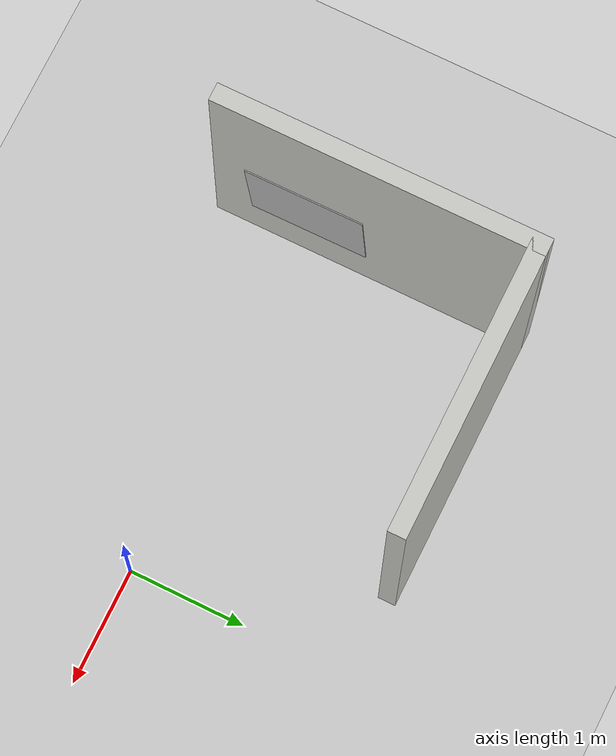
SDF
<sdf version="1.7">
 <world name="default">
  <light name="sun" type="directional">
   <pose>0 0 10 0 -0 0</pose>
   <diffuse>0.8 0.8 0.8 1</diffuse>
   <specular>0.2 0.2 0.2 1</specular>
   <attenuation>
    <range>1000</range>
    <constant>0.9</constant>
    <linear>0.01</linear>
    <quadratic>0.001</quadratic>
   </attenuation>
   <direction>-0.5 0.1 -0.9</direction>
   <spot><inner_angle>0</inner_angle><outer_angle>0</outer_angle><falloff>0</falloff></spot>
  </light>
  <model name="ground_plane">
   <static>1</static>
   <link name="link">
    <collision name="collision">
     <geometry><plane><normal>0 0 1</normal><size>100 100</size></plane></geometry>
     <surface>
      <contact><collide_bitmask>65535</collide_bitmask></contact>
      <friction><ode><mu>100</mu><mu2>50</mu2></ode></friction>
     </surface>
    </collision>
    <visual name="visual">
     <cast_shadows>0</cast_shadows>
     <geometry><plane><normal>0 0 1</normal><size>100 100</size></plane></geometry>
     <material>
      <script><uri>file://media/materials/scripts/gazebo.material</uri><name>Gazebo/Grey</name></script>
     </material>
    </visual>
   </link>
  </model>
  <gravity>0 0 -9.8</gravity>
  <magnetic_field>6e-06 2.3e-05 -4.2e-05</magnetic_field>
  <atmosphere type="adiabatic"/>
  <physics type="ode">
   <max_step_size>0.001</max_step_size>
   <real_time_factor>1</real_time_factor>
   <real_time_update_rate>1000</real_time_update_rate>
  </physics>
  <scene><ambient>0.4 0.4 0.4 1</ambient><background>0.7 0.7 0.7 1</background><shadows>1</shadows></scene>
  <spherical_coordinates>
   <surface_model>EARTH_WGS84</surface_model>
   <latitude_deg>0</latitude_deg>
   <longitude_deg>0</longitude_deg>
   <elevation>0</elevation>
   <heading_deg>0</heading_deg>
  </spherical_coordinates>
  <model name="Untitled">
   <pose>0.648038 0.629916 0 0 -0 0</pose>
   <link name="Wall_0">
    <collision name="Wall_0_Collision">
     <geometry><box><size>2.75 0.15 2.5</size></box></geometry>
     <pose>0 0 1.25 0 -0 0</pose>
    </collision>
    <visual name="Wall_0_Visual">
     <pose>0 0 1.25 0 -0 0</pose>
     <geometry><box><size>2.75 0.15 2.5</size></box></geometry>
     <material>
      <script><uri>file://media/materials/scripts/gazebo.material</uri><name>Gazebo/CeilingTiled</name></script>
      <ambient>1 0.764706 0.305882 1</ambient>
     </material>
     <meta><layer>0</layer></meta>
    </visual>
    <pose>-3.74924 0 0 0 -0 1.5708</pose>
   </link>
   <link name="Wall_1">
    <collision name="Wall_1_Collision">
     <geometry><box><size>2.5 0.15 2.5</size></box></geometry>
     <pose>0 0 1.25 0 -0 0</pose>
    </collision>
    <visual name="Wall_1_Visual">
     <pose>0 0 1.25 0 -0 0</pose>
     <geometry><box><size>2.5 0.15 2.5</size></box></geometry>
     <material>
      <script><uri>file://media/materials/scripts/gazebo.material</uri><name>Gazebo/CeilingTiled</name></script>
      <ambient>1 0.764706 0.305882 1</ambient>
     </material>
     <meta><layer>0</layer></meta>
    </visual>
    <pose>-2.57424 1.3 0 0 -0 0</pose>
   </link>
   <static>1</static>
  </model>
  <model name="Apriltag36_11_00000">
   <link name="main">
    <visual name="main_Visual">
     <geometry><box><size>1 1 0.01</size></box></geometry>
     <material>
      <script>
       <uri>model://Apriltag36_11_00000/materials/scripts</uri>
       <uri>model://Apriltag36_11_00000/materials/textures</uri>
       <name>Apriltag36_11_00000</name>
      </script>
     </material>
    </visual>
   </link>
   <static>1</static>
   <pose>-2.93007 0.11128 1.20697 2.88206 1.49695 2.88325</pose>
  </model>
 </world>
</sdf>
